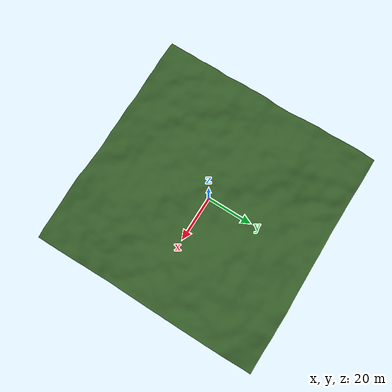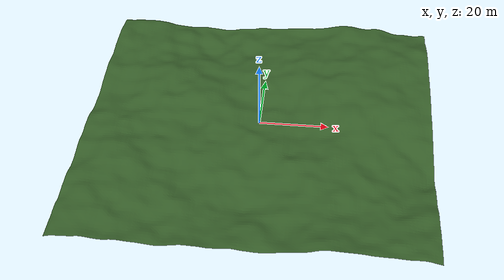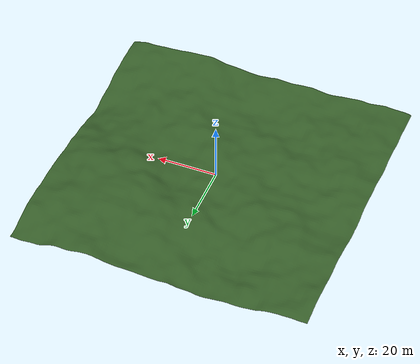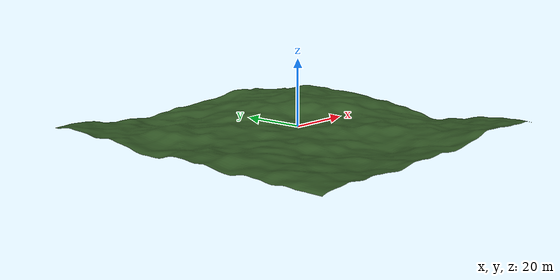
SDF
<?xml version="1.0" ?>
<sdf version="1.8">
  <model name="terrain">
    <static>true</static>
    <link name="link">
      <collision name="collision">
        <geometry>
          <mesh>
            <uri>model://terrain/terrain.obj</uri>
            <scale>1 1 1</scale>
          </mesh>
        </geometry>
        <surface>
          <friction>
            <ode>
              <mu>2.0</mu>
              <mu2>2.0</mu2>
            </ode>
          </friction>
        </surface>
      </collision>
      <visual name="visual">
        <geometry>
          <mesh>
            <uri>model://terrain/terrain.obj</uri>
            <scale>1 1 1</scale>
          </mesh>
        </geometry>
        <material>
          <ambient>0.2 0.35 0.15 1</ambient>
          <diffuse>0.2 0.35 0.15 1</diffuse>
          <specular>0.05 0.05 0.05 1</specular>
        </material>
      </visual>
    </link>
  </model>
</sdf>
